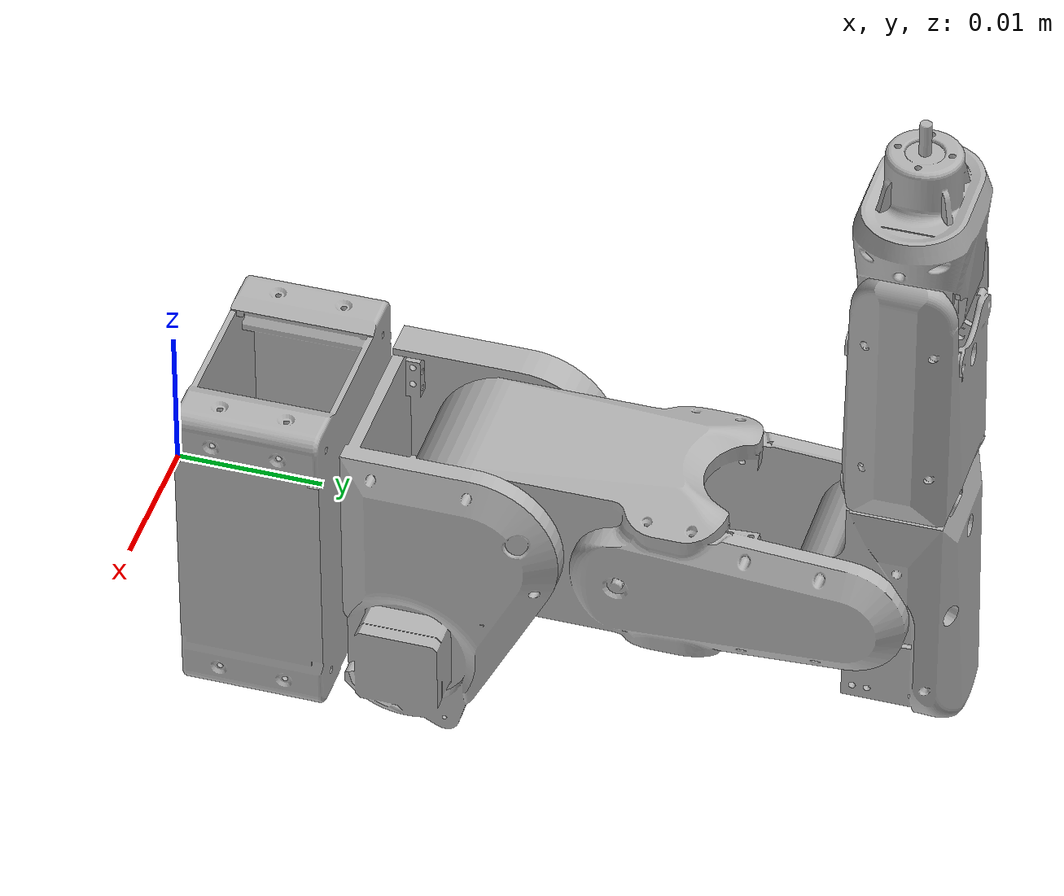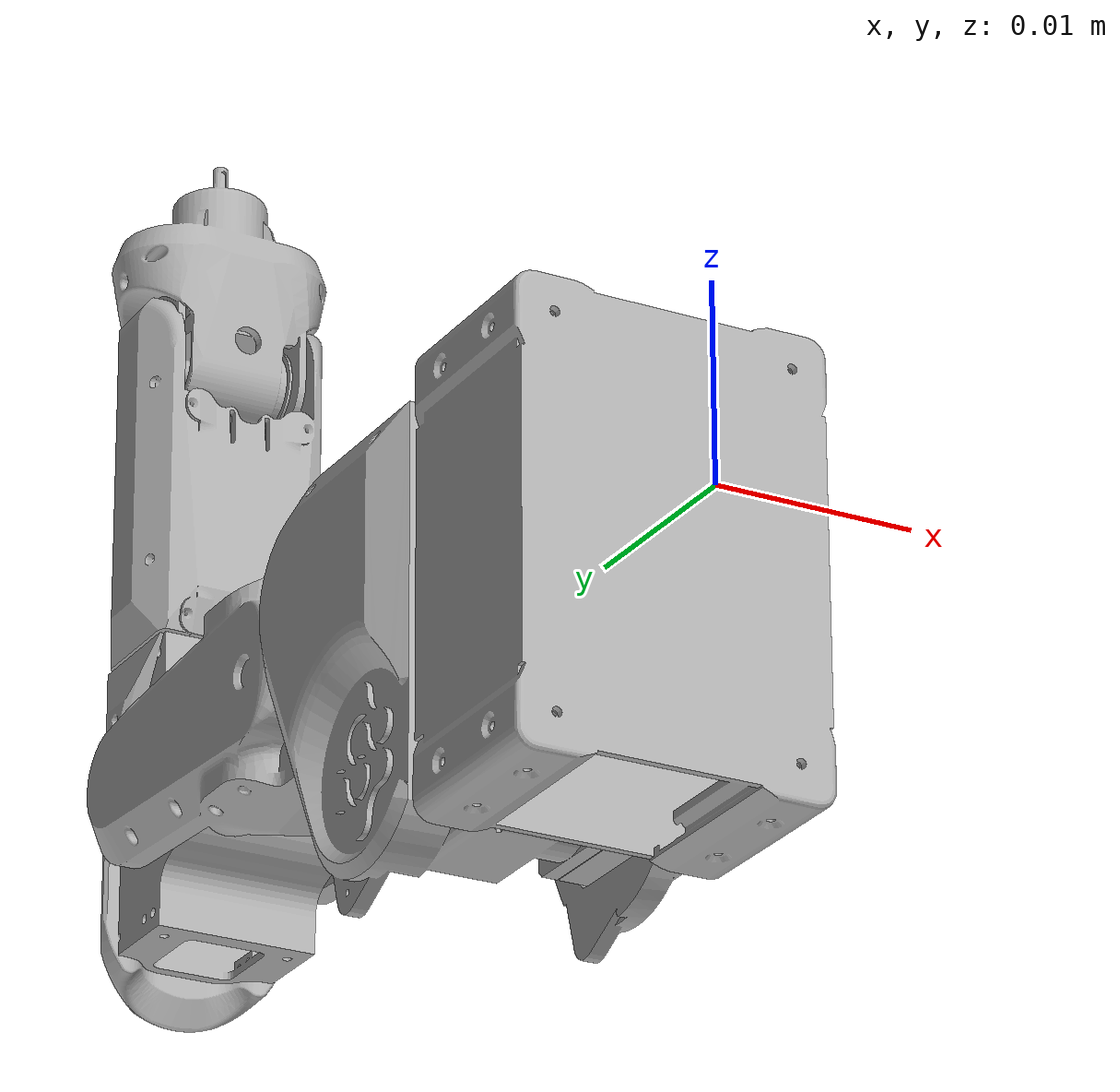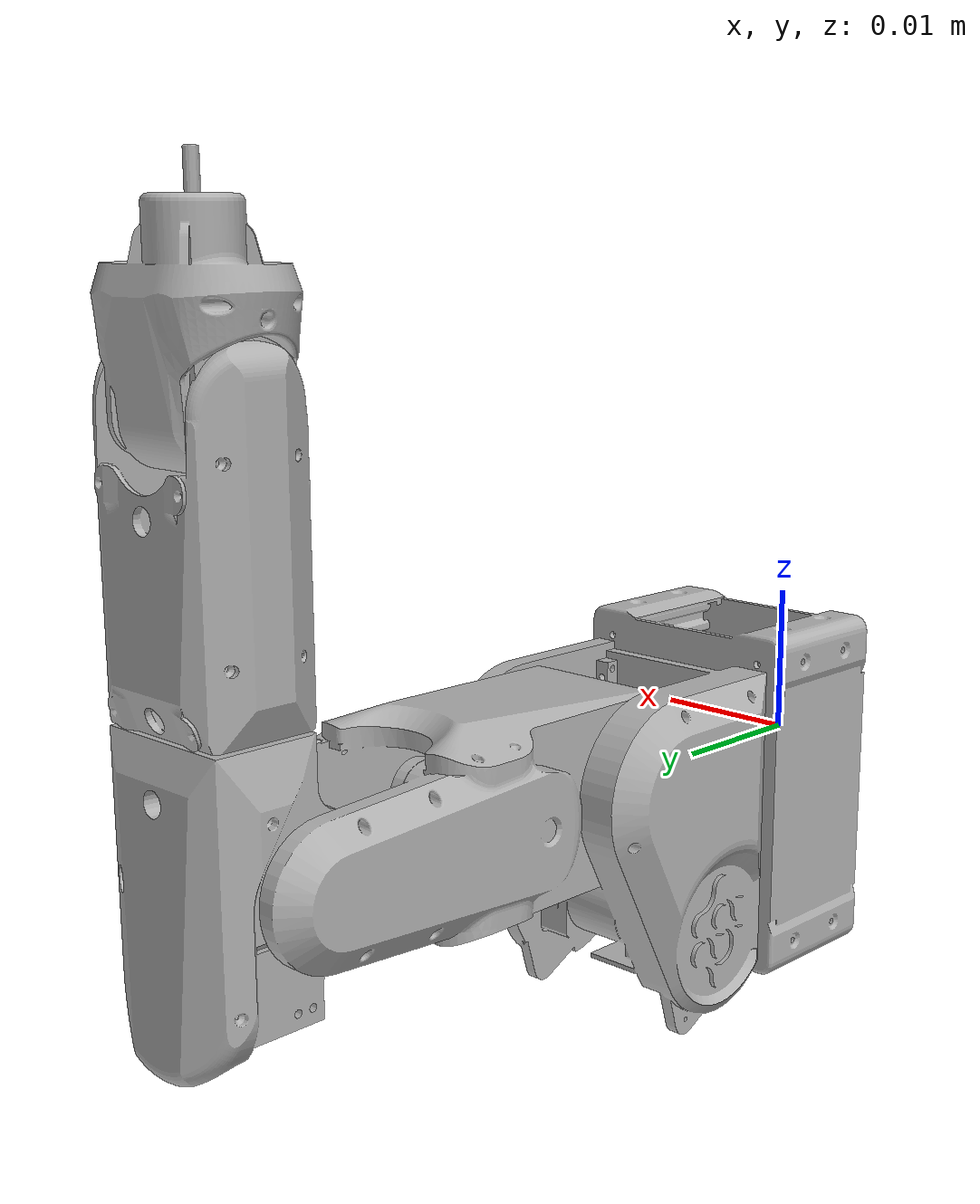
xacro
<?xml version="1.0" ?>
<robot name="vorcarm" xmlns:xacro="http://www.ros.org/wiki/xacro">

<xacro:include filename="$(find vorcarm_description)/urdf/materials.xacro" />
<xacro:include filename="$(find vorcarm_description)/urdf/vorcarm.trans" />
<xacro:include filename="$(find vorcarm_description)/urdf/vorcarm.gazebo" />
<link name="base_link">
  <inertial>
    <origin rpy="0 0 0" xyz="-0.006472255599327793 0.07285966954348783 -0.016705155570983798"/>
    <mass value="4.653642617434571"/>
    <inertia ixx="0.035664" ixy="-0.0" ixz="0.0" iyy="0.045352" iyz="0.0" izz="0.023149"/>
  </inertial>
  <visual>
    <origin rpy="0 0 0" xyz="0 0 0"/>
    <geometry>
      <mesh filename="package://vorcarm_description/meshes/base_link.stl" scale="0.001 0.001 0.001"/>
    </geometry>
    <material name="silver"/>
  </visual>
  <collision>
    <origin rpy="0 0 0" xyz="0 0 0"/>
    <geometry>
      <mesh filename="package://vorcarm_description/meshes/base_link.stl" scale="0.001 0.001 0.001"/>
    </geometry>
  </collision>
</link>

<link name="VOR1_1">
  <inertial>
    <origin rpy="0 0 0" xyz="0.0012198506600670025 0.04547181366823108 -0.024349672758017176"/>
    <mass value="0.990508490511616"/>
    <inertia ixx="0.004463" ixy="0.000101" ixz="0.000396" iyy="0.005914" iyz="-0.000259" izz="0.004051"/>
  </inertial>
  <visual>
    <origin rpy="0 0 0" xyz="0.006472 -0.132177 0.016705"/>
    <geometry>
      <mesh filename="package://vorcarm_description/meshes/VOR1_1.stl" scale="0.001 0.001 0.001"/>
    </geometry>
    <material name="silver"/>
  </visual>
  <collision>
    <origin rpy="0 0 0" xyz="0.006472 -0.132177 0.016705"/>
    <geometry>
      <mesh filename="package://vorcarm_description/meshes/VOR1_1.stl" scale="0.001 0.001 0.001"/>
    </geometry>
  </collision>
</link>

<link name="VOR2_1">
  <inertial>
    <origin rpy="0 0 0" xyz="-0.04859101570287613 0.10124732213787074 -4.685166305758159e-06"/>
    <mass value="0.764954694560743"/>
    <inertia ixx="0.00625" ixy="-7.2e-05" ixz="-0.0" iyy="0.002297" iyz="-0.0" izz="0.006685"/>
  </inertial>
  <visual>
    <origin rpy="0 0 0" xyz="-0.044528 -0.220177 -0.018295"/>
    <geometry>
      <mesh filename="package://vorcarm_description/meshes/VOR2_1.stl" scale="0.001 0.001 0.001"/>
    </geometry>
    <material name="silver"/>
  </visual>
  <collision>
    <origin rpy="0 0 0" xyz="-0.044528 -0.220177 -0.018295"/>
    <geometry>
      <mesh filename="package://vorcarm_description/meshes/VOR2_1.stl" scale="0.001 0.001 0.001"/>
    </geometry>
  </collision>
</link>

<link name="VOR3_1">
  <inertial>
    <origin rpy="0 0 0" xyz="-0.04311848179022122 0.03514233271320294 0.00019341729401236088"/>
    <mass value="0.3802084789471969"/>
    <inertia ixx="0.001345" ixy="1e-06" ixz="0.0" iyy="0.001357" iyz="8e-05" izz="0.000789"/>
  </inertial>
  <visual>
    <origin rpy="0 0 0" xyz="-0.040528 -0.470177 -0.018295"/>
    <geometry>
      <mesh filename="package://vorcarm_description/meshes/VOR3_1.stl" scale="0.001 0.001 0.001"/>
    </geometry>
    <material name="silver"/>
  </visual>
  <collision>
    <origin rpy="0 0 0" xyz="-0.040528 -0.470177 -0.018295"/>
    <geometry>
      <mesh filename="package://vorcarm_description/meshes/VOR3_1.stl" scale="0.001 0.001 0.001"/>
    </geometry>
  </collision>
</link>

<link name="VOR4_1">
  <inertial>
    <origin rpy="0 0 0" xyz="-0.06320146334283841 0.016234160338142012 0.6614467730909659"/>
    <mass value="0.2852327395048785"/>
    <inertia ixx="0.000958" ixy="-0.0" ixz="1e-06" iyy="0.001193" iyz="6e-06" izz="0.000578"/>
  </inertial>
  <visual>
    <origin rpy="0 0 0" xyz="-0.060823 -0.48265 0.476883"/>
    <geometry>
      <mesh filename="package://vorcarm_description/meshes/VOR4_1.stl" scale="0.001 0.001 0.001"/>
    </geometry>
    <material name="silver"/>
  </visual>
  <collision>
    <origin rpy="0 0 0" xyz="-0.060823 -0.48265 0.476883"/>
    <geometry>
      <mesh filename="package://vorcarm_description/meshes/VOR4_1.stl" scale="0.001 0.001 0.001"/>
    </geometry>
  </collision>
</link>

<link name="VOR5_1">
  <inertial>
    <origin rpy="0 0 0" xyz="0.03729758429239918 8.985175270348478e-05 0.04408937253432382"/>
    <mass value="0.3816299390540977"/>
    <inertia ixx="0.000507" ixy="-0.0" ixz="1e-06" iyy="0.000606" iyz="1e-06" izz="0.000386"/>
  </inertial>
  <visual>
    <origin rpy="0 0 0" xyz="0.041472 -0.500177 -0.265795"/>
    <geometry>
      <mesh filename="package://vorcarm_description/meshes/VOR5_1.stl" scale="0.001 0.001 0.001"/>
    </geometry>
    <material name="silver"/>
  </visual>
  <collision>
    <origin rpy="0 0 0" xyz="0.041472 -0.500177 -0.265795"/>
    <geometry>
      <mesh filename="package://vorcarm_description/meshes/VOR5_1.stl" scale="0.001 0.001 0.001"/>
    </geometry>
  </collision>
</link>

<joint name="Rev6" type="continuous">
  <origin rpy="0 0 0" xyz="-0.006472 0.132177 -0.016705"/>
  <parent link="base_link"/>
  <child link="VOR1_1"/>
  <axis xyz="-0.0 1.0 0.0"/>
</joint>

<joint name="Rev7" type="continuous">
  <origin rpy="0 0 0" xyz="0.051 0.088 0.035"/>
  <parent link="VOR1_1"/>
  <child link="VOR2_1"/>
  <axis xyz="-1.0 -0.0 -0.0"/>
</joint>

<joint name="Rev8" type="continuous">
  <origin rpy="0 0 0" xyz="-0.004 0.25 0.0"/>
  <parent link="VOR2_1"/>
  <child link="VOR3_1"/>
  <axis xyz="1.0 0.0 0.0"/>
</joint>

<joint name="Rev9" type="continuous">
  <origin rpy="0 0 0" xyz="0.020295 0.012473 -0.495178"/>
  <parent link="VOR3_1"/>
  <child link="VOR4_1"/>
  <axis xyz="-0.0 0.0 1.0"/>
</joint>

<joint name="Rev10" type="continuous">
  <origin rpy="0 0 0" xyz="-0.102295 0.017527 0.742678"/>
  <parent link="VOR4_1"/>
  <child link="VOR5_1"/>
  <axis xyz="1.0 0.0 0.0"/>
</joint>

</robot>

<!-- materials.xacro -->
<robot name="vorcarm" xmlns:xacro="http://www.ros.org/wiki/xacro" >

<material name="silver">
  <color rgba="0.700 0.700 0.700 1.000"/>
</material>

</robot>

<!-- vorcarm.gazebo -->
<robot name="vorcarm" xmlns:xacro="http://www.ros.org/wiki/xacro" >

<xacro:property name="body_color" value="Gazebo/Silver" />

<gazebo>
  <plugin filename="libgazebo_ros_control.so" name="control"/>
</gazebo>
<gazebo reference="base_link">
  <material>${body_color}</material>
  <mu1>0.2</mu1>
  <mu2>0.2</mu2>
  <selfCollide>true</selfCollide>
  <gravity>true</gravity>
</gazebo>

<gazebo reference="VOR1_1">
  <material>${body_color}</material>
  <mu1>0.2</mu1>
  <mu2>0.2</mu2>
  <selfCollide>true</selfCollide>
</gazebo>

<gazebo reference="VOR2_1">
  <material>${body_color}</material>
  <mu1>0.2</mu1>
  <mu2>0.2</mu2>
  <selfCollide>true</selfCollide>
</gazebo>

<gazebo reference="VOR3_1">
  <material>${body_color}</material>
  <mu1>0.2</mu1>
  <mu2>0.2</mu2>
  <selfCollide>true</selfCollide>
</gazebo>

<gazebo reference="VOR4_1">
  <material>${body_color}</material>
  <mu1>0.2</mu1>
  <mu2>0.2</mu2>
  <selfCollide>true</selfCollide>
</gazebo>

<gazebo reference="VOR5_1">
  <material>${body_color}</material>
  <mu1>0.2</mu1>
  <mu2>0.2</mu2>
  <selfCollide>true</selfCollide>
</gazebo>

</robot>
